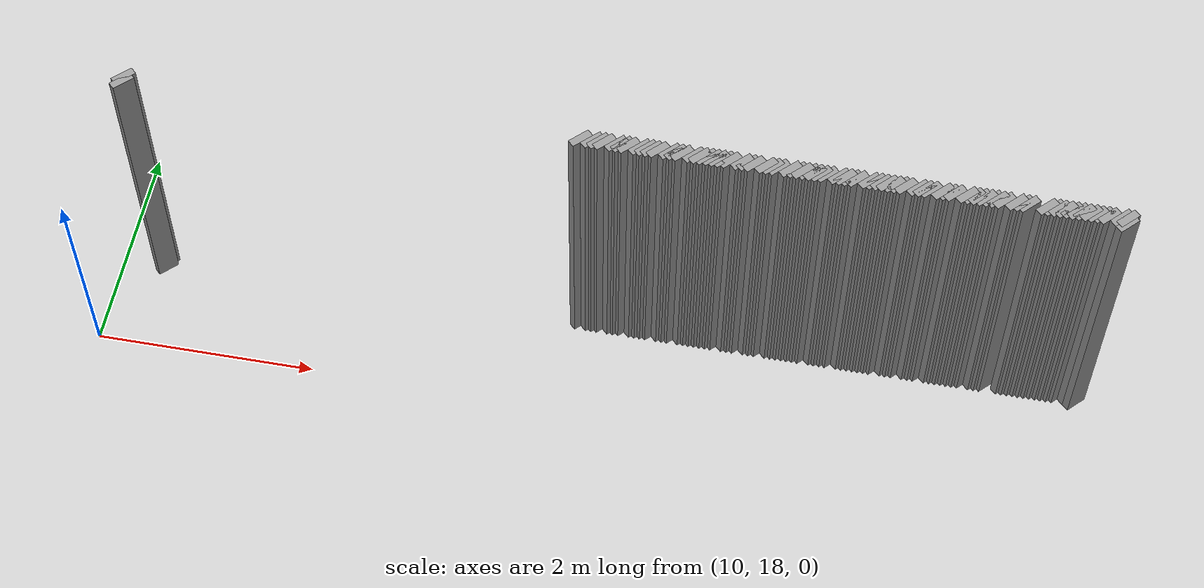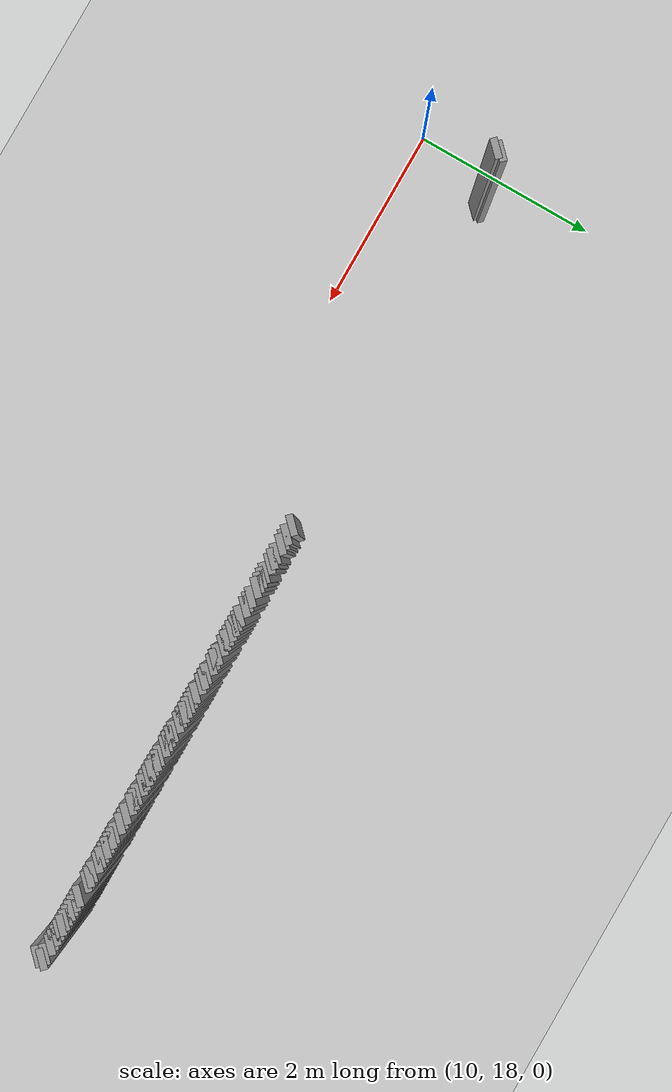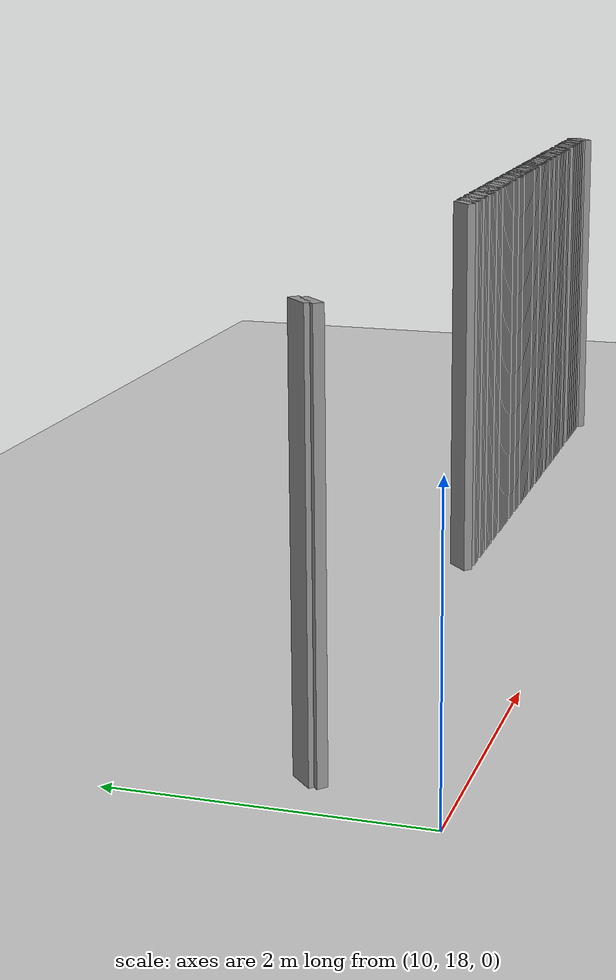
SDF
<sdf version="1.5">
 <world name="default">
  <include><uri>model://ground_plane</uri></include>
  <include><uri>model://sun</uri></include>
  <model name="grey_wall_157">
   <static>1</static>
   <link name="link">
    <pose>14.3 18.95  1.4 0 0 -0.785398163397</pose>
    <collision name="collision"><geometry><box><size>0.0707106781187 .2  2.8</size></box></geometry></collision>
    <visual name="visual">
     <cast_shadows>0</cast_shadows>
     <geometry><box><size>0.0707106781187 .2  2.8</size></box></geometry>
     <material>
      <script>
       <uri>model://grey_wall/materials/scripts</uri>
       <uri>model://grey_wall/materials/textures</uri>
       <name>vrc/grey_wall</name>
      </script>
     </material>
    </visual>
   </link>
  </model>
  <model name="grey_wall_158">
   <static>1</static>
   <link name="link">
    <pose>14.4 18.95  1.4 0 0 -0.785398163397</pose>
    <collision name="collision"><geometry><box><size>0.0707106781187 .2  2.8</size></box></geometry></collision>
    <visual name="visual">
     <cast_shadows>0</cast_shadows>
     <geometry><box><size>0.0707106781187 .2  2.8</size></box></geometry>
     <material>
      <script>
       <uri>model://grey_wall/materials/scripts</uri>
       <uri>model://grey_wall/materials/textures</uri>
       <name>vrc/grey_wall</name>
      </script>
     </material>
    </visual>
   </link>
  </model>
  <model name="grey_wall_159">
   <static>1</static>
   <link name="link">
    <pose>14.45 18.95  1.4 0 0 -0.785398163397</pose>
    <collision name="collision"><geometry><box><size>0.0707106781187 .2  2.8</size></box></geometry></collision>
    <visual name="visual">
     <cast_shadows>0</cast_shadows>
     <geometry><box><size>0.0707106781187 .2  2.8</size></box></geometry>
     <material>
      <script>
       <uri>model://grey_wall/materials/scripts</uri>
       <uri>model://grey_wall/materials/textures</uri>
       <name>vrc/grey_wall</name>
      </script>
     </material>
    </visual>
   </link>
  </model>
  <model name="grey_wall_160">
   <static>1</static>
   <link name="link">
    <pose>14.5 18.95  1.4 0 0 -0.785398163397</pose>
    <collision name="collision"><geometry><box><size>0.0707106781187 .2  2.8</size></box></geometry></collision>
    <visual name="visual">
     <cast_shadows>0</cast_shadows>
     <geometry><box><size>0.0707106781187 .2  2.8</size></box></geometry>
     <material>
      <script>
       <uri>model://grey_wall/materials/scripts</uri>
       <uri>model://grey_wall/materials/textures</uri>
       <name>vrc/grey_wall</name>
      </script>
     </material>
    </visual>
   </link>
  </model>
  <model name="grey_wall_161">
   <static>1</static>
   <link name="link">
    <pose>14.6 18.95  1.4 0 0 -0.785398163397</pose>
    <collision name="collision"><geometry><box><size>0.0707106781187 .2  2.8</size></box></geometry></collision>
    <visual name="visual">
     <cast_shadows>0</cast_shadows>
     <geometry><box><size>0.0707106781187 .2  2.8</size></box></geometry>
     <material>
      <script>
       <uri>model://grey_wall/materials/scripts</uri>
       <uri>model://grey_wall/materials/textures</uri>
       <name>vrc/grey_wall</name>
      </script>
     </material>
    </visual>
   </link>
  </model>
  <model name="grey_wall_162">
   <static>1</static>
   <link name="link">
    <pose>14.65 18.95  1.4 0 0 -0.785398163397</pose>
    <collision name="collision"><geometry><box><size>0.0707106781187 .2  2.8</size></box></geometry></collision>
    <visual name="visual">
     <cast_shadows>0</cast_shadows>
     <geometry><box><size>0.0707106781187 .2  2.8</size></box></geometry>
     <material>
      <script>
       <uri>model://grey_wall/materials/scripts</uri>
       <uri>model://grey_wall/materials/textures</uri>
       <name>vrc/grey_wall</name>
      </script>
     </material>
    </visual>
   </link>
  </model>
  <model name="grey_wall_163">
   <static>1</static>
   <link name="link">
    <pose>14.7 18.95  1.4 0 0 -0.785398163397</pose>
    <collision name="collision"><geometry><box><size>0.0707106781187 .2  2.8</size></box></geometry></collision>
    <visual name="visual">
     <cast_shadows>0</cast_shadows>
     <geometry><box><size>0.0707106781187 .2  2.8</size></box></geometry>
     <material>
      <script>
       <uri>model://grey_wall/materials/scripts</uri>
       <uri>model://grey_wall/materials/textures</uri>
       <name>vrc/grey_wall</name>
      </script>
     </material>
    </visual>
   </link>
  </model>
  <model name="grey_wall_164">
   <static>1</static>
   <link name="link">
    <pose>14.8 18.95  1.4 0 0 -0.785398163397</pose>
    <collision name="collision"><geometry><box><size>0.0707106781187 .2  2.8</size></box></geometry></collision>
    <visual name="visual">
     <cast_shadows>0</cast_shadows>
     <geometry><box><size>0.0707106781187 .2  2.8</size></box></geometry>
     <material>
      <script>
       <uri>model://grey_wall/materials/scripts</uri>
       <uri>model://grey_wall/materials/textures</uri>
       <name>vrc/grey_wall</name>
      </script>
     </material>
    </visual>
   </link>
  </model>
  <model name="grey_wall_165">
   <static>1</static>
   <link name="link">
    <pose>14.85 18.95  1.4 0 0 -0.785398163397</pose>
    <collision name="collision"><geometry><box><size>0.0707106781187 .2  2.8</size></box></geometry></collision>
    <visual name="visual">
     <cast_shadows>0</cast_shadows>
     <geometry><box><size>0.0707106781187 .2  2.8</size></box></geometry>
     <material>
      <script>
       <uri>model://grey_wall/materials/scripts</uri>
       <uri>model://grey_wall/materials/textures</uri>
       <name>vrc/grey_wall</name>
      </script>
     </material>
    </visual>
   </link>
  </model>
  <model name="grey_wall_166">
   <static>1</static>
   <link name="link">
    <pose>14.9 18.95  1.4 0 0 -0.785398163397</pose>
    <collision name="collision"><geometry><box><size>0.0707106781187 .2  2.8</size></box></geometry></collision>
    <visual name="visual">
     <cast_shadows>0</cast_shadows>
     <geometry><box><size>0.0707106781187 .2  2.8</size></box></geometry>
     <material>
      <script>
       <uri>model://grey_wall/materials/scripts</uri>
       <uri>model://grey_wall/materials/textures</uri>
       <name>vrc/grey_wall</name>
      </script>
     </material>
    </visual>
   </link>
  </model>
  <model name="grey_wall_167">
   <static>1</static>
   <link name="link">
    <pose>14.95 18.95  1.4 0 0 -0.785398163397</pose>
    <collision name="collision"><geometry><box><size>0.0707106781187 .2  2.8</size></box></geometry></collision>
    <visual name="visual">
     <cast_shadows>0</cast_shadows>
     <geometry><box><size>0.0707106781187 .2  2.8</size></box></geometry>
     <material>
      <script>
       <uri>model://grey_wall/materials/scripts</uri>
       <uri>model://grey_wall/materials/textures</uri>
       <name>vrc/grey_wall</name>
      </script>
     </material>
    </visual>
   </link>
  </model>
  <model name="grey_wall_168">
   <static>1</static>
   <link name="link">
    <pose>15.05 18.95  1.4 0 0 -0.785398163397</pose>
    <collision name="collision"><geometry><box><size>0.0707106781187 .2  2.8</size></box></geometry></collision>
    <visual name="visual">
     <cast_shadows>0</cast_shadows>
     <geometry><box><size>0.0707106781187 .2  2.8</size></box></geometry>
     <material>
      <script>
       <uri>model://grey_wall/materials/scripts</uri>
       <uri>model://grey_wall/materials/textures</uri>
       <name>vrc/grey_wall</name>
      </script>
     </material>
    </visual>
   </link>
  </model>
  <model name="grey_wall_169">
   <static>1</static>
   <link name="link">
    <pose>15.1 18.95  1.4 0 0 -0.785398163397</pose>
    <collision name="collision"><geometry><box><size>0.0707106781187 .2  2.8</size></box></geometry></collision>
    <visual name="visual">
     <cast_shadows>0</cast_shadows>
     <geometry><box><size>0.0707106781187 .2  2.8</size></box></geometry>
     <material>
      <script>
       <uri>model://grey_wall/materials/scripts</uri>
       <uri>model://grey_wall/materials/textures</uri>
       <name>vrc/grey_wall</name>
      </script>
     </material>
    </visual>
   </link>
  </model>
  <model name="grey_wall_170">
   <static>1</static>
   <link name="link">
    <pose>15.15 18.95  1.4 0 0 -0.785398163397</pose>
    <collision name="collision"><geometry><box><size>0.0707106781187 .2  2.8</size></box></geometry></collision>
    <visual name="visual">
     <cast_shadows>0</cast_shadows>
     <geometry><box><size>0.0707106781187 .2  2.8</size></box></geometry>
     <material>
      <script>
       <uri>model://grey_wall/materials/scripts</uri>
       <uri>model://grey_wall/materials/textures</uri>
       <name>vrc/grey_wall</name>
      </script>
     </material>
    </visual>
   </link>
  </model>
  <model name="grey_wall_171">
   <static>1</static>
   <link name="link">
    <pose>15.25 18.95  1.4 0 0 -0.785398163397</pose>
    <collision name="collision"><geometry><box><size>0.0707106781187 .2  2.8</size></box></geometry></collision>
    <visual name="visual">
     <cast_shadows>0</cast_shadows>
     <geometry><box><size>0.0707106781187 .2  2.8</size></box></geometry>
     <material>
      <script>
       <uri>model://grey_wall/materials/scripts</uri>
       <uri>model://grey_wall/materials/textures</uri>
       <name>vrc/grey_wall</name>
      </script>
     </material>
    </visual>
   </link>
  </model>
  <model name="grey_wall_172">
   <static>1</static>
   <link name="link">
    <pose>15.3 18.95  1.4 0 0 -0.785398163397</pose>
    <collision name="collision"><geometry><box><size>0.0707106781187 .2  2.8</size></box></geometry></collision>
    <visual name="visual">
     <cast_shadows>0</cast_shadows>
     <geometry><box><size>0.0707106781187 .2  2.8</size></box></geometry>
     <material>
      <script>
       <uri>model://grey_wall/materials/scripts</uri>
       <uri>model://grey_wall/materials/textures</uri>
       <name>vrc/grey_wall</name>
      </script>
     </material>
    </visual>
   </link>
  </model>
  <model name="grey_wall_173">
   <static>1</static>
   <link name="link">
    <pose>15.35 18.95  1.4 0 0 -0.785398163397</pose>
    <collision name="collision"><geometry><box><size>0.0707106781187 .2  2.8</size></box></geometry></collision>
    <visual name="visual">
     <cast_shadows>0</cast_shadows>
     <geometry><box><size>0.0707106781187 .2  2.8</size></box></geometry>
     <material>
      <script>
       <uri>model://grey_wall/materials/scripts</uri>
       <uri>model://grey_wall/materials/textures</uri>
       <name>vrc/grey_wall</name>
      </script>
     </material>
    </visual>
   </link>
  </model>
  <model name="grey_wall_174">
   <static>1</static>
   <link name="link">
    <pose>15.4 18.95  1.4 0 0 -0.785398163397</pose>
    <collision name="collision"><geometry><box><size>0.0707106781187 .2  2.8</size></box></geometry></collision>
    <visual name="visual">
     <cast_shadows>0</cast_shadows>
     <geometry><box><size>0.0707106781187 .2  2.8</size></box></geometry>
     <material>
      <script>
       <uri>model://grey_wall/materials/scripts</uri>
       <uri>model://grey_wall/materials/textures</uri>
       <name>vrc/grey_wall</name>
      </script>
     </material>
    </visual>
   </link>
  </model>
  <model name="grey_wall_175">
   <static>1</static>
   <link name="link">
    <pose>15.45 18.95  1.4 0 0 -0.785398163397</pose>
    <collision name="collision"><geometry><box><size>0.0707106781187 .2  2.8</size></box></geometry></collision>
    <visual name="visual">
     <cast_shadows>0</cast_shadows>
     <geometry><box><size>0.0707106781187 .2  2.8</size></box></geometry>
     <material>
      <script>
       <uri>model://grey_wall/materials/scripts</uri>
       <uri>model://grey_wall/materials/textures</uri>
       <name>vrc/grey_wall</name>
      </script>
     </material>
    </visual>
   </link>
  </model>
  <model name="grey_wall_176">
   <static>1</static>
   <link name="link">
    <pose>15.5 18.95  1.4 0 0 -0.785398163397</pose>
    <collision name="collision"><geometry><box><size>0.0707106781187 .2  2.8</size></box></geometry></collision>
    <visual name="visual">
     <cast_shadows>0</cast_shadows>
     <geometry><box><size>0.0707106781187 .2  2.8</size></box></geometry>
     <material>
      <script>
       <uri>model://grey_wall/materials/scripts</uri>
       <uri>model://grey_wall/materials/textures</uri>
       <name>vrc/grey_wall</name>
      </script>
     </material>
    </visual>
   </link>
  </model>
  <model name="grey_wall_177">
   <static>1</static>
   <link name="link">
    <pose>15.55 18.95  1.4 0 0 -0.785398163397</pose>
    <collision name="collision"><geometry><box><size>0.0707106781187 .2  2.8</size></box></geometry></collision>
    <visual name="visual">
     <cast_shadows>0</cast_shadows>
     <geometry><box><size>0.0707106781187 .2  2.8</size></box></geometry>
     <material>
      <script>
       <uri>model://grey_wall/materials/scripts</uri>
       <uri>model://grey_wall/materials/textures</uri>
       <name>vrc/grey_wall</name>
      </script>
     </material>
    </visual>
   </link>
  </model>
  <model name="grey_wall_178">
   <static>1</static>
   <link name="link">
    <pose>15.65 18.95  1.4 0 0 -0.785398163397</pose>
    <collision name="collision"><geometry><box><size>0.0707106781187 .2  2.8</size></box></geometry></collision>
    <visual name="visual">
     <cast_shadows>0</cast_shadows>
     <geometry><box><size>0.0707106781187 .2  2.8</size></box></geometry>
     <material>
      <script>
       <uri>model://grey_wall/materials/scripts</uri>
       <uri>model://grey_wall/materials/textures</uri>
       <name>vrc/grey_wall</name>
      </script>
     </material>
    </visual>
   </link>
  </model>
  <model name="grey_wall_179">
   <static>1</static>
   <link name="link">
    <pose>15.7 18.95  1.4 0 0 -0.785398163397</pose>
    <collision name="collision"><geometry><box><size>0.0707106781187 .2  2.8</size></box></geometry></collision>
    <visual name="visual">
     <cast_shadows>0</cast_shadows>
     <geometry><box><size>0.0707106781187 .2  2.8</size></box></geometry>
     <material>
      <script>
       <uri>model://grey_wall/materials/scripts</uri>
       <uri>model://grey_wall/materials/textures</uri>
       <name>vrc/grey_wall</name>
      </script>
     </material>
    </visual>
   </link>
  </model>
  <model name="grey_wall_180">
   <static>1</static>
   <link name="link">
    <pose>15.75 18.95  1.4 0 0 -0.785398163397</pose>
    <collision name="collision"><geometry><box><size>0.0707106781187 .2  2.8</size></box></geometry></collision>
    <visual name="visual">
     <cast_shadows>0</cast_shadows>
     <geometry><box><size>0.0707106781187 .2  2.8</size></box></geometry>
     <material>
      <script>
       <uri>model://grey_wall/materials/scripts</uri>
       <uri>model://grey_wall/materials/textures</uri>
       <name>vrc/grey_wall</name>
      </script>
     </material>
    </visual>
   </link>
  </model>
  <model name="grey_wall_181">
   <static>1</static>
   <link name="link">
    <pose>15.85 18.95  1.4 0 0 -0.785398163397</pose>
    <collision name="collision"><geometry><box><size>0.0707106781187 .2  2.8</size></box></geometry></collision>
    <visual name="visual">
     <cast_shadows>0</cast_shadows>
     <geometry><box><size>0.0707106781187 .2  2.8</size></box></geometry>
     <material>
      <script>
       <uri>model://grey_wall/materials/scripts</uri>
       <uri>model://grey_wall/materials/textures</uri>
       <name>vrc/grey_wall</name>
      </script>
     </material>
    </visual>
   </link>
  </model>
  <model name="grey_wall_182">
   <static>1</static>
   <link name="link">
    <pose>15.9 18.95  1.4 0 0 -0.785398163397</pose>
    <collision name="collision"><geometry><box><size>0.0707106781187 .2  2.8</size></box></geometry></collision>
    <visual name="visual">
     <cast_shadows>0</cast_shadows>
     <geometry><box><size>0.0707106781187 .2  2.8</size></box></geometry>
     <material>
      <script>
       <uri>model://grey_wall/materials/scripts</uri>
       <uri>model://grey_wall/materials/textures</uri>
       <name>vrc/grey_wall</name>
      </script>
     </material>
    </visual>
   </link>
  </model>
  <model name="grey_wall_183">
   <static>1</static>
   <link name="link">
    <pose>15.95 18.95  1.4 0 0 -0.785398163397</pose>
    <collision name="collision"><geometry><box><size>0.0707106781187 .2  2.8</size></box></geometry></collision>
    <visual name="visual">
     <cast_shadows>0</cast_shadows>
     <geometry><box><size>0.0707106781187 .2  2.8</size></box></geometry>
     <material>
      <script>
       <uri>model://grey_wall/materials/scripts</uri>
       <uri>model://grey_wall/materials/textures</uri>
       <name>vrc/grey_wall</name>
      </script>
     </material>
    </visual>
   </link>
  </model>
  <model name="grey_wall_184">
   <static>1</static>
   <link name="link">
    <pose>16.05 18.95  1.4 0 0 -0.785398163397</pose>
    <collision name="collision"><geometry><box><size>0.0707106781187 .2  2.8</size></box></geometry></collision>
    <visual name="visual">
     <cast_shadows>0</cast_shadows>
     <geometry><box><size>0.0707106781187 .2  2.8</size></box></geometry>
     <material>
      <script>
       <uri>model://grey_wall/materials/scripts</uri>
       <uri>model://grey_wall/materials/textures</uri>
       <name>vrc/grey_wall</name>
      </script>
     </material>
    </visual>
   </link>
  </model>
  <model name="grey_wall_185">
   <static>1</static>
   <link name="link">
    <pose>16.1 18.95  1.4 0 0 -0.785398163397</pose>
    <collision name="collision"><geometry><box><size>0.0707106781187 .2  2.8</size></box></geometry></collision>
    <visual name="visual">
     <cast_shadows>0</cast_shadows>
     <geometry><box><size>0.0707106781187 .2  2.8</size></box></geometry>
     <material>
      <script>
       <uri>model://grey_wall/materials/scripts</uri>
       <uri>model://grey_wall/materials/textures</uri>
       <name>vrc/grey_wall</name>
      </script>
     </material>
    </visual>
   </link>
  </model>
  <model name="grey_wall_186">
   <static>1</static>
   <link name="link">
    <pose>16.15 18.95  1.4 0 0 -0.785398163397</pose>
    <collision name="collision"><geometry><box><size>0.0707106781187 .2  2.8</size></box></geometry></collision>
    <visual name="visual">
     <cast_shadows>0</cast_shadows>
     <geometry><box><size>0.0707106781187 .2  2.8</size></box></geometry>
     <material>
      <script>
       <uri>model://grey_wall/materials/scripts</uri>
       <uri>model://grey_wall/materials/textures</uri>
       <name>vrc/grey_wall</name>
      </script>
     </material>
    </visual>
   </link>
  </model>
  <model name="grey_wall_187">
   <static>1</static>
   <link name="link">
    <pose>16.2 18.95  1.4 0 0 -0.785398163397</pose>
    <collision name="collision"><geometry><box><size>0.0707106781187 .2  2.8</size></box></geometry></collision>
    <visual name="visual">
     <cast_shadows>0</cast_shadows>
     <geometry><box><size>0.0707106781187 .2  2.8</size></box></geometry>
     <material>
      <script>
       <uri>model://grey_wall/materials/scripts</uri>
       <uri>model://grey_wall/materials/textures</uri>
       <name>vrc/grey_wall</name>
      </script>
     </material>
    </visual>
   </link>
  </model>
  <model name="grey_wall_188">
   <static>1</static>
   <link name="link">
    <pose>16.25 18.95  1.4 0 0 -0.785398163397</pose>
    <collision name="collision"><geometry><box><size>0.0707106781187 .2  2.8</size></box></geometry></collision>
    <visual name="visual">
     <cast_shadows>0</cast_shadows>
     <geometry><box><size>0.0707106781187 .2  2.8</size></box></geometry>
     <material>
      <script>
       <uri>model://grey_wall/materials/scripts</uri>
       <uri>model://grey_wall/materials/textures</uri>
       <name>vrc/grey_wall</name>
      </script>
     </material>
    </visual>
   </link>
  </model>
  <model name="grey_wall_189">
   <static>1</static>
   <link name="link">
    <pose>16.3 18.95  1.4 0 0 -0.785398163397</pose>
    <collision name="collision"><geometry><box><size>0.0707106781187 .2  2.8</size></box></geometry></collision>
    <visual name="visual">
     <cast_shadows>0</cast_shadows>
     <geometry><box><size>0.0707106781187 .2  2.8</size></box></geometry>
     <material>
      <script>
       <uri>model://grey_wall/materials/scripts</uri>
       <uri>model://grey_wall/materials/textures</uri>
       <name>vrc/grey_wall</name>
      </script>
     </material>
    </visual>
   </link>
  </model>
  <model name="grey_wall_190">
   <static>1</static>
   <link name="link">
    <pose>16.35 18.95  1.4 0 0 -0.785398163397</pose>
    <collision name="collision"><geometry><box><size>0.0707106781187 .2  2.8</size></box></geometry></collision>
    <visual name="visual">
     <cast_shadows>0</cast_shadows>
     <geometry><box><size>0.0707106781187 .2  2.8</size></box></geometry>
     <material>
      <script>
       <uri>model://grey_wall/materials/scripts</uri>
       <uri>model://grey_wall/materials/textures</uri>
       <name>vrc/grey_wall</name>
      </script>
     </material>
    </visual>
   </link>
  </model>
  <model name="grey_wall_191">
   <static>1</static>
   <link name="link">
    <pose>16.45 18.95  1.4 0 0 -0.785398163397</pose>
    <collision name="collision"><geometry><box><size>0.0707106781187 .2  2.8</size></box></geometry></collision>
    <visual name="visual">
     <cast_shadows>0</cast_shadows>
     <geometry><box><size>0.0707106781187 .2  2.8</size></box></geometry>
     <material>
      <script>
       <uri>model://grey_wall/materials/scripts</uri>
       <uri>model://grey_wall/materials/textures</uri>
       <name>vrc/grey_wall</name>
      </script>
     </material>
    </visual>
   </link>
  </model>
  <model name="grey_wall_192">
   <static>1</static>
   <link name="link">
    <pose>16.5 18.95  1.4 0 0 -0.785398163397</pose>
    <collision name="collision"><geometry><box><size>0.0707106781187 .2  2.8</size></box></geometry></collision>
    <visual name="visual">
     <cast_shadows>0</cast_shadows>
     <geometry><box><size>0.0707106781187 .2  2.8</size></box></geometry>
     <material>
      <script>
       <uri>model://grey_wall/materials/scripts</uri>
       <uri>model://grey_wall/materials/textures</uri>
       <name>vrc/grey_wall</name>
      </script>
     </material>
    </visual>
   </link>
  </model>
  <model name="grey_wall_193">
   <static>1</static>
   <link name="link">
    <pose>16.55 18.95  1.4 0 0 -0.785398163397</pose>
    <collision name="collision"><geometry><box><size>0.0707106781187 .2  2.8</size></box></geometry></collision>
    <visual name="visual">
     <cast_shadows>0</cast_shadows>
     <geometry><box><size>0.0707106781187 .2  2.8</size></box></geometry>
     <material>
      <script>
       <uri>model://grey_wall/materials/scripts</uri>
       <uri>model://grey_wall/materials/textures</uri>
       <name>vrc/grey_wall</name>
      </script>
     </material>
    </visual>
   </link>
  </model>
  <model name="grey_wall_194">
   <static>1</static>
   <link name="link">
    <pose>16.6 18.95  1.4 0 0 -0.785398163397</pose>
    <collision name="collision"><geometry><box><size>0.0707106781187 .2  2.8</size></box></geometry></collision>
    <visual name="visual">
     <cast_shadows>0</cast_shadows>
     <geometry><box><size>0.0707106781187 .2  2.8</size></box></geometry>
     <material>
      <script>
       <uri>model://grey_wall/materials/scripts</uri>
       <uri>model://grey_wall/materials/textures</uri>
       <name>vrc/grey_wall</name>
      </script>
     </material>
    </visual>
   </link>
  </model>
  <model name="grey_wall_195">
   <static>1</static>
   <link name="link">
    <pose>16.7 18.95  1.4 0 0 -0.785398163397</pose>
    <collision name="collision"><geometry><box><size>0.0707106781187 .2  2.8</size></box></geometry></collision>
    <visual name="visual">
     <cast_shadows>0</cast_shadows>
     <geometry><box><size>0.0707106781187 .2  2.8</size></box></geometry>
     <material>
      <script>
       <uri>model://grey_wall/materials/scripts</uri>
       <uri>model://grey_wall/materials/textures</uri>
       <name>vrc/grey_wall</name>
      </script>
     </material>
    </visual>
   </link>
  </model>
  <model name="grey_wall_196">
   <static>1</static>
   <link name="link">
    <pose>16.75 18.95  1.4 0 0 -0.785398163397</pose>
    <collision name="collision"><geometry><box><size>0.0707106781187 .2  2.8</size></box></geometry></collision>
    <visual name="visual">
     <cast_shadows>0</cast_shadows>
     <geometry><box><size>0.0707106781187 .2  2.8</size></box></geometry>
     <material>
      <script>
       <uri>model://grey_wall/materials/scripts</uri>
       <uri>model://grey_wall/materials/textures</uri>
       <name>vrc/grey_wall</name>
      </script>
     </material>
    </visual>
   </link>
  </model>
  <model name="grey_wall_197">
   <static>1</static>
   <link name="link">
    <pose>16.8 18.95  1.4 0 0 -0.785398163397</pose>
    <collision name="collision"><geometry><box><size>0.0707106781187 .2  2.8</size></box></geometry></collision>
    <visual name="visual">
     <cast_shadows>0</cast_shadows>
     <geometry><box><size>0.0707106781187 .2  2.8</size></box></geometry>
     <material>
      <script>
       <uri>model://grey_wall/materials/scripts</uri>
       <uri>model://grey_wall/materials/textures</uri>
       <name>vrc/grey_wall</name>
      </script>
     </material>
    </visual>
   </link>
  </model>
  <model name="grey_wall_198">
   <static>1</static>
   <link name="link">
    <pose>16.85 18.95  1.4 0 0 -0.785398163397</pose>
    <collision name="collision"><geometry><box><size>0.0707106781187 .2  2.8</size></box></geometry></collision>
    <visual name="visual">
     <cast_shadows>0</cast_shadows>
     <geometry><box><size>0.0707106781187 .2  2.8</size></box></geometry>
     <material>
      <script>
       <uri>model://grey_wall/materials/scripts</uri>
       <uri>model://grey_wall/materials/textures</uri>
       <name>vrc/grey_wall</name>
      </script>
     </material>
    </visual>
   </link>
  </model>
  <model name="grey_wall_199">
   <static>1</static>
   <link name="link">
    <pose>16.9 18.95  1.4 0 0 -0.785398163397</pose>
    <collision name="collision"><geometry><box><size>0.0707106781187 .2  2.8</size></box></geometry></collision>
    <visual name="visual">
     <cast_shadows>0</cast_shadows>
     <geometry><box><size>0.0707106781187 .2  2.8</size></box></geometry>
     <material>
      <script>
       <uri>model://grey_wall/materials/scripts</uri>
       <uri>model://grey_wall/materials/textures</uri>
       <name>vrc/grey_wall</name>
      </script>
     </material>
    </visual>
   </link>
  </model>
  <model name="grey_wall_200">
   <static>1</static>
   <link name="link">
    <pose>16.95 18.95  1.4 0 0 -0.785398163397</pose>
    <collision name="collision"><geometry><box><size>0.0707106781187 .2  2.8</size></box></geometry></collision>
    <visual name="visual">
     <cast_shadows>0</cast_shadows>
     <geometry><box><size>0.0707106781187 .2  2.8</size></box></geometry>
     <material>
      <script>
       <uri>model://grey_wall/materials/scripts</uri>
       <uri>model://grey_wall/materials/textures</uri>
       <name>vrc/grey_wall</name>
      </script>
     </material>
    </visual>
   </link>
  </model>
  <model name="grey_wall_201">
   <static>1</static>
   <link name="link">
    <pose>17.0 18.95  1.4 0 0 -0.785398163397</pose>
    <collision name="collision"><geometry><box><size>0.0707106781187 .2  2.8</size></box></geometry></collision>
    <visual name="visual">
     <cast_shadows>0</cast_shadows>
     <geometry><box><size>0.0707106781187 .2  2.8</size></box></geometry>
     <material>
      <script>
       <uri>model://grey_wall/materials/scripts</uri>
       <uri>model://grey_wall/materials/textures</uri>
       <name>vrc/grey_wall</name>
      </script>
     </material>
    </visual>
   </link>
  </model>
  <model name="grey_wall_202">
   <static>1</static>
   <link name="link">
    <pose>17.1 18.95  1.4 0 0 -0.785398163397</pose>
    <collision name="collision"><geometry><box><size>0.0707106781187 .2  2.8</size></box></geometry></collision>
    <visual name="visual">
     <cast_shadows>0</cast_shadows>
     <geometry><box><size>0.0707106781187 .2  2.8</size></box></geometry>
     <material>
      <script>
       <uri>model://grey_wall/materials/scripts</uri>
       <uri>model://grey_wall/materials/textures</uri>
       <name>vrc/grey_wall</name>
      </script>
     </material>
    </visual>
   </link>
  </model>
  <model name="grey_wall_203">
   <static>1</static>
   <link name="link">
    <pose>17.15 18.95  1.4 0 0 -0.785398163397</pose>
    <collision name="collision"><geometry><box><size>0.0707106781187 .2  2.8</size></box></geometry></collision>
    <visual name="visual">
     <cast_shadows>0</cast_shadows>
     <geometry><box><size>0.0707106781187 .2  2.8</size></box></geometry>
     <material>
      <script>
       <uri>model://grey_wall/materials/scripts</uri>
       <uri>model://grey_wall/materials/textures</uri>
       <name>vrc/grey_wall</name>
      </script>
     </material>
    </visual>
   </link>
  </model>
  <model name="grey_wall_204">
   <static>1</static>
   <link name="link">
    <pose>17.2 18.95  1.4 0 0 -0.785398163397</pose>
    <collision name="collision"><geometry><box><size>0.0707106781187 .2  2.8</size></box></geometry></collision>
    <visual name="visual">
     <cast_shadows>0</cast_shadows>
     <geometry><box><size>0.0707106781187 .2  2.8</size></box></geometry>
     <material>
      <script>
       <uri>model://grey_wall/materials/scripts</uri>
       <uri>model://grey_wall/materials/textures</uri>
       <name>vrc/grey_wall</name>
      </script>
     </material>
    </visual>
   </link>
  </model>
  <model name="grey_wall_205">
   <static>1</static>
   <link name="link">
    <pose>17.3 18.95  1.4 0 0 -0.785398163397</pose>
    <collision name="collision"><geometry><box><size>0.0707106781187 .2  2.8</size></box></geometry></collision>
    <visual name="visual">
     <cast_shadows>0</cast_shadows>
     <geometry><box><size>0.0707106781187 .2  2.8</size></box></geometry>
     <material>
      <script>
       <uri>model://grey_wall/materials/scripts</uri>
       <uri>model://grey_wall/materials/textures</uri>
       <name>vrc/grey_wall</name>
      </script>
     </material>
    </visual>
   </link>
  </model>
  <model name="grey_wall_206">
   <static>1</static>
   <link name="link">
    <pose>17.35 18.95  1.4 0 0 -0.785398163397</pose>
    <collision name="collision"><geometry><box><size>0.0707106781187 .2  2.8</size></box></geometry></collision>
    <visual name="visual">
     <cast_shadows>0</cast_shadows>
     <geometry><box><size>0.0707106781187 .2  2.8</size></box></geometry>
     <material>
      <script>
       <uri>model://grey_wall/materials/scripts</uri>
       <uri>model://grey_wall/materials/textures</uri>
       <name>vrc/grey_wall</name>
      </script>
     </material>
    </visual>
   </link>
  </model>
  <model name="grey_wall_207">
   <static>1</static>
   <link name="link">
    <pose>17.4 18.95  1.4 0 0 -0.785398163397</pose>
    <collision name="collision"><geometry><box><size>0.0707106781187 .2  2.8</size></box></geometry></collision>
    <visual name="visual">
     <cast_shadows>0</cast_shadows>
     <geometry><box><size>0.0707106781187 .2  2.8</size></box></geometry>
     <material>
      <script>
       <uri>model://grey_wall/materials/scripts</uri>
       <uri>model://grey_wall/materials/textures</uri>
       <name>vrc/grey_wall</name>
      </script>
     </material>
    </visual>
   </link>
  </model>
  <model name="grey_wall_208">
   <static>1</static>
   <link name="link">
    <pose>17.5 18.95  1.4 0 0 -0.785398163397</pose>
    <collision name="collision"><geometry><box><size>0.0707106781187 .2  2.8</size></box></geometry></collision>
    <visual name="visual">
     <cast_shadows>0</cast_shadows>
     <geometry><box><size>0.0707106781187 .2  2.8</size></box></geometry>
     <material>
      <script>
       <uri>model://grey_wall/materials/scripts</uri>
       <uri>model://grey_wall/materials/textures</uri>
       <name>vrc/grey_wall</name>
      </script>
     </material>
    </visual>
   </link>
  </model>
  <model name="grey_wall_209">
   <static>1</static>
   <link name="link">
    <pose>17.55 18.95  1.4 0 0 -0.785398163397</pose>
    <collision name="collision"><geometry><box><size>0.0707106781187 .2  2.8</size></box></geometry></collision>
    <visual name="visual">
     <cast_shadows>0</cast_shadows>
     <geometry><box><size>0.0707106781187 .2  2.8</size></box></geometry>
     <material>
      <script>
       <uri>model://grey_wall/materials/scripts</uri>
       <uri>model://grey_wall/materials/textures</uri>
       <name>vrc/grey_wall</name>
      </script>
     </material>
    </visual>
   </link>
  </model>
  <model name="grey_wall_210">
   <static>1</static>
   <link name="link">
    <pose>17.6 18.95  1.4 0 0 -0.785398163397</pose>
    <collision name="collision"><geometry><box><size>0.0707106781187 .2  2.8</size></box></geometry></collision>
    <visual name="visual">
     <cast_shadows>0</cast_shadows>
     <geometry><box><size>0.0707106781187 .2  2.8</size></box></geometry>
     <material>
      <script>
       <uri>model://grey_wall/materials/scripts</uri>
       <uri>model://grey_wall/materials/textures</uri>
       <name>vrc/grey_wall</name>
      </script>
     </material>
    </visual>
   </link>
  </model>
  <model name="grey_wall_211">
   <static>1</static>
   <link name="link">
    <pose>17.65 18.95  1.4 0 0 -0.785398163397</pose>
    <collision name="collision"><geometry><box><size>0.0707106781187 .2  2.8</size></box></geometry></collision>
    <visual name="visual">
     <cast_shadows>0</cast_shadows>
     <geometry><box><size>0.0707106781187 .2  2.8</size></box></geometry>
     <material>
      <script>
       <uri>model://grey_wall/materials/scripts</uri>
       <uri>model://grey_wall/materials/textures</uri>
       <name>vrc/grey_wall</name>
      </script>
     </material>
    </visual>
   </link>
  </model>
  <model name="grey_wall_212">
   <static>1</static>
   <link name="link">
    <pose>17.7 18.95  1.4 0 0 -0.785398163397</pose>
    <collision name="collision"><geometry><box><size>0.0707106781187 .2  2.8</size></box></geometry></collision>
    <visual name="visual">
     <cast_shadows>0</cast_shadows>
     <geometry><box><size>0.0707106781187 .2  2.8</size></box></geometry>
     <material>
      <script>
       <uri>model://grey_wall/materials/scripts</uri>
       <uri>model://grey_wall/materials/textures</uri>
       <name>vrc/grey_wall</name>
      </script>
     </material>
    </visual>
   </link>
  </model>
  <model name="grey_wall_213">
   <static>1</static>
   <link name="link">
    <pose>17.75 18.95  1.4 0 0 -0.785398163397</pose>
    <collision name="collision"><geometry><box><size>0.0707106781187 .2  2.8</size></box></geometry></collision>
    <visual name="visual">
     <cast_shadows>0</cast_shadows>
     <geometry><box><size>0.0707106781187 .2  2.8</size></box></geometry>
     <material>
      <script>
       <uri>model://grey_wall/materials/scripts</uri>
       <uri>model://grey_wall/materials/textures</uri>
       <name>vrc/grey_wall</name>
      </script>
     </material>
    </visual>
   </link>
  </model>
  <model name="grey_wall_214">
   <static>1</static>
   <link name="link">
    <pose>17.8 18.95  1.4 0 0 -0.785398163397</pose>
    <collision name="collision"><geometry><box><size>0.0707106781187 .2  2.8</size></box></geometry></collision>
    <visual name="visual">
     <cast_shadows>0</cast_shadows>
     <geometry><box><size>0.0707106781187 .2  2.8</size></box></geometry>
     <material>
      <script>
       <uri>model://grey_wall/materials/scripts</uri>
       <uri>model://grey_wall/materials/textures</uri>
       <name>vrc/grey_wall</name>
      </script>
     </material>
    </visual>
   </link>
  </model>
  <model name="grey_wall_215">
   <static>1</static>
   <link name="link">
    <pose>17.9 18.95  1.4 0 0 -0.785398163397</pose>
    <collision name="collision"><geometry><box><size>0.0707106781187 .2  2.8</size></box></geometry></collision>
    <visual name="visual">
     <cast_shadows>0</cast_shadows>
     <geometry><box><size>0.0707106781187 .2  2.8</size></box></geometry>
     <material>
      <script>
       <uri>model://grey_wall/materials/scripts</uri>
       <uri>model://grey_wall/materials/textures</uri>
       <name>vrc/grey_wall</name>
      </script>
     </material>
    </visual>
   </link>
  </model>
  <model name="grey_wall_216">
   <static>1</static>
   <link name="link">
    <pose>17.95 18.95  1.4 0 0 -0.785398163397</pose>
    <collision name="collision"><geometry><box><size>0.0707106781187 .2  2.8</size></box></geometry></collision>
    <visual name="visual">
     <cast_shadows>0</cast_shadows>
     <geometry><box><size>0.0707106781187 .2  2.8</size></box></geometry>
     <material>
      <script>
       <uri>model://grey_wall/materials/scripts</uri>
       <uri>model://grey_wall/materials/textures</uri>
       <name>vrc/grey_wall</name>
      </script>
     </material>
    </visual>
   </link>
  </model>
  <model name="grey_wall_217">
   <static>1</static>
   <link name="link">
    <pose>18.0 18.95  1.4 0 0 -0.785398163397</pose>
    <collision name="collision"><geometry><box><size>0.0707106781187 .2  2.8</size></box></geometry></collision>
    <visual name="visual">
     <cast_shadows>0</cast_shadows>
     <geometry><box><size>0.0707106781187 .2  2.8</size></box></geometry>
     <material>
      <script>
       <uri>model://grey_wall/materials/scripts</uri>
       <uri>model://grey_wall/materials/textures</uri>
       <name>vrc/grey_wall</name>
      </script>
     </material>
    </visual>
   </link>
  </model>
  <model name="grey_wall_218">
   <static>1</static>
   <link name="link">
    <pose>18.15 18.95  1.4 0 0 -0.785398163397</pose>
    <collision name="collision"><geometry><box><size>0.0707106781187 .2  2.8</size></box></geometry></collision>
    <visual name="visual">
     <cast_shadows>0</cast_shadows>
     <geometry><box><size>0.0707106781187 .2  2.8</size></box></geometry>
     <material>
      <script>
       <uri>model://grey_wall/materials/scripts</uri>
       <uri>model://grey_wall/materials/textures</uri>
       <name>vrc/grey_wall</name>
      </script>
     </material>
    </visual>
   </link>
  </model>
  <model name="grey_wall_219">
   <static>1</static>
   <link name="link">
    <pose>18.2 18.95  1.4 0 0 -0.785398163397</pose>
    <collision name="collision"><geometry><box><size>0.0707106781187 .2  2.8</size></box></geometry></collision>
    <visual name="visual">
     <cast_shadows>0</cast_shadows>
     <geometry><box><size>0.0707106781187 .2  2.8</size></box></geometry>
     <material>
      <script>
       <uri>model://grey_wall/materials/scripts</uri>
       <uri>model://grey_wall/materials/textures</uri>
       <name>vrc/grey_wall</name>
      </script>
     </material>
    </visual>
   </link>
  </model>
  <model name="grey_wall_220">
   <static>1</static>
   <link name="link">
    <pose>18.25 18.95  1.4 0 0 -0.785398163397</pose>
    <collision name="collision"><geometry><box><size>0.0707106781187 .2  2.8</size></box></geometry></collision>
    <visual name="visual">
     <cast_shadows>0</cast_shadows>
     <geometry><box><size>0.0707106781187 .2  2.8</size></box></geometry>
     <material>
      <script>
       <uri>model://grey_wall/materials/scripts</uri>
       <uri>model://grey_wall/materials/textures</uri>
       <name>vrc/grey_wall</name>
      </script>
     </material>
    </visual>
   </link>
  </model>
  <model name="grey_wall_221">
   <static>1</static>
   <link name="link">
    <pose>18.3 18.95  1.4 0 0 -0.785398163397</pose>
    <collision name="collision"><geometry><box><size>0.0707106781187 .2  2.8</size></box></geometry></collision>
    <visual name="visual">
     <cast_shadows>0</cast_shadows>
     <geometry><box><size>0.0707106781187 .2  2.8</size></box></geometry>
     <material>
      <script>
       <uri>model://grey_wall/materials/scripts</uri>
       <uri>model://grey_wall/materials/textures</uri>
       <name>vrc/grey_wall</name>
      </script>
     </material>
    </visual>
   </link>
  </model>
  <model name="grey_wall_222">
   <static>1</static>
   <link name="link">
    <pose>18.35 18.95  1.4 0 0 -0.785398163397</pose>
    <collision name="collision"><geometry><box><size>0.0707106781187 .2  2.8</size></box></geometry></collision>
    <visual name="visual">
     <cast_shadows>0</cast_shadows>
     <geometry><box><size>0.0707106781187 .2  2.8</size></box></geometry>
     <material>
      <script>
       <uri>model://grey_wall/materials/scripts</uri>
       <uri>model://grey_wall/materials/textures</uri>
       <name>vrc/grey_wall</name>
      </script>
     </material>
    </visual>
   </link>
  </model>
  <model name="grey_wall_223">
   <static>1</static>
   <link name="link">
    <pose>18.4 18.95  1.4 0 0 -0.785398163397</pose>
    <collision name="collision"><geometry><box><size>0.0707106781187 .2  2.8</size></box></geometry></collision>
    <visual name="visual">
     <cast_shadows>0</cast_shadows>
     <geometry><box><size>0.0707106781187 .2  2.8</size></box></geometry>
     <material>
      <script>
       <uri>model://grey_wall/materials/scripts</uri>
       <uri>model://grey_wall/materials/textures</uri>
       <name>vrc/grey_wall</name>
      </script>
     </material>
    </visual>
   </link>
  </model>
  <model name="grey_wall_224">
   <static>1</static>
   <link name="link">
    <pose>18.45 18.95  1.4 0 0 -0.785398163397</pose>
    <collision name="collision"><geometry><box><size>0.0707106781187 .2  2.8</size></box></geometry></collision>
    <visual name="visual">
     <cast_shadows>0</cast_shadows>
     <geometry><box><size>0.0707106781187 .2  2.8</size></box></geometry>
     <material>
      <script>
       <uri>model://grey_wall/materials/scripts</uri>
       <uri>model://grey_wall/materials/textures</uri>
       <name>vrc/grey_wall</name>
      </script>
     </material>
    </visual>
   </link>
  </model>
  <model name="grey_wall_225">
   <static>1</static>
   <link name="link">
    <pose>18.5 18.95  1.4 0 0 -0.785398163397</pose>
    <collision name="collision"><geometry><box><size>0.0707106781187 .2  2.8</size></box></geometry></collision>
    <visual name="visual">
     <cast_shadows>0</cast_shadows>
     <geometry><box><size>0.0707106781187 .2  2.8</size></box></geometry>
     <material>
      <script>
       <uri>model://grey_wall/materials/scripts</uri>
       <uri>model://grey_wall/materials/textures</uri>
       <name>vrc/grey_wall</name>
      </script>
     </material>
    </visual>
   </link>
  </model>
  <model name="grey_wall_226">
   <static>1</static>
   <link name="link">
    <pose>18.55 18.95  1.4 0 0 -0.785398163397</pose>
    <collision name="collision"><geometry><box><size>0.0707106781187 .2  2.8</size></box></geometry></collision>
    <visual name="visual">
     <cast_shadows>0</cast_shadows>
     <geometry><box><size>0.0707106781187 .2  2.8</size></box></geometry>
     <material>
      <script>
       <uri>model://grey_wall/materials/scripts</uri>
       <uri>model://grey_wall/materials/textures</uri>
       <name>vrc/grey_wall</name>
      </script>
     </material>
    </visual>
   </link>
  </model>
  <model name="grey_wall_227">
   <static>1</static>
   <link name="link">
    <pose>18.6 18.95  1.4 0 0 -0.785398163397</pose>
    <collision name="collision"><geometry><box><size>0.0707106781187 .2  2.8</size></box></geometry></collision>
    <visual name="visual">
     <cast_shadows>0</cast_shadows>
     <geometry><box><size>0.0707106781187 .2  2.8</size></box></geometry>
     <material>
      <script>
       <uri>model://grey_wall/materials/scripts</uri>
       <uri>model://grey_wall/materials/textures</uri>
       <name>vrc/grey_wall</name>
      </script>
     </material>
    </visual>
   </link>
  </model>
  <model name="grey_wall_228">
   <static>1</static>
   <link name="link">
    <pose>18.65 18.95  1.4 0 0 -0.785398163397</pose>
    <collision name="collision"><geometry><box><size>0.0707106781187 .2  2.8</size></box></geometry></collision>
    <visual name="visual">
     <cast_shadows>0</cast_shadows>
     <geometry><box><size>0.0707106781187 .2  2.8</size></box></geometry>
     <material>
      <script>
       <uri>model://grey_wall/materials/scripts</uri>
       <uri>model://grey_wall/materials/textures</uri>
       <name>vrc/grey_wall</name>
      </script>
     </material>
    </visual>
   </link>
  </model>
  <model name="grey_wall_229">
   <static>1</static>
   <link name="link">
    <pose>18.75 18.95  1.4 0 0 -0.785398163397</pose>
    <collision name="collision"><geometry><box><size>0.0707106781187 .2  2.8</size></box></geometry></collision>
    <visual name="visual">
     <cast_shadows>0</cast_shadows>
     <geometry><box><size>0.0707106781187 .2  2.8</size></box></geometry>
     <material>
      <script>
       <uri>model://grey_wall/materials/scripts</uri>
       <uri>model://grey_wall/materials/textures</uri>
       <name>vrc/grey_wall</name>
      </script>
     </material>
    </visual>
   </link>
  </model>
  <model name="grey_wall_230">
   <static>1</static>
   <link name="link">
    <pose>18.8 18.95  1.4 0 0 -0.785398163397</pose>
    <collision name="collision"><geometry><box><size>0.0707106781187 .2  2.8</size></box></geometry></collision>
    <visual name="visual">
     <cast_shadows>0</cast_shadows>
     <geometry><box><size>0.0707106781187 .2  2.8</size></box></geometry>
     <material>
      <script>
       <uri>model://grey_wall/materials/scripts</uri>
       <uri>model://grey_wall/materials/textures</uri>
       <name>vrc/grey_wall</name>
      </script>
     </material>
    </visual>
   </link>
  </model>
  <model name="grey_wall_231">
   <static>1</static>
   <link name="link">
    <pose>10.4 18.9  1.4 0 0 -0.785398163397</pose>
    <collision name="collision"><geometry><box><size>0.0707106781187 .2  2.8</size></box></geometry></collision>
    <visual name="visual">
     <cast_shadows>0</cast_shadows>
     <geometry><box><size>0.0707106781187 .2  2.8</size></box></geometry>
     <material>
      <script>
       <uri>model://grey_wall/materials/scripts</uri>
       <uri>model://grey_wall/materials/textures</uri>
       <name>vrc/grey_wall</name>
      </script>
     </material>
    </visual>
   </link>
  </model>
  <model name="grey_wall_232">
   <static>1</static>
   <link name="link">
    <pose>18.8 18.9  1.4 0 0 -0.785398163397</pose>
    <collision name="collision"><geometry><box><size>0.0707106781187 .2  2.8</size></box></geometry></collision>
    <visual name="visual">
     <cast_shadows>0</cast_shadows>
     <geometry><box><size>0.0707106781187 .2  2.8</size></box></geometry>
     <material>
      <script>
       <uri>model://grey_wall/materials/scripts</uri>
       <uri>model://grey_wall/materials/textures</uri>
       <name>vrc/grey_wall</name>
      </script>
     </material>
    </visual>
   </link>
  </model>
  <model name="grey_wall_233">
   <static>1</static>
   <link name="link">
    <pose>10.4 18.85  1.4 0 0 -0.785398163397</pose>
    <collision name="collision"><geometry><box><size>0.0707106781187 .2  2.8</size></box></geometry></collision>
    <visual name="visual">
     <cast_shadows>0</cast_shadows>
     <geometry><box><size>0.0707106781187 .2  2.8</size></box></geometry>
     <material>
      <script>
       <uri>model://grey_wall/materials/scripts</uri>
       <uri>model://grey_wall/materials/textures</uri>
       <name>vrc/grey_wall</name>
      </script>
     </material>
    </visual>
   </link>
  </model>
 </world>
</sdf>
